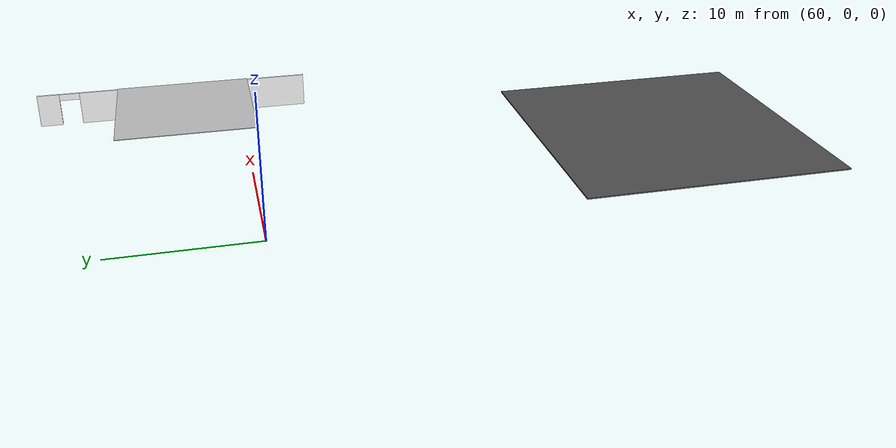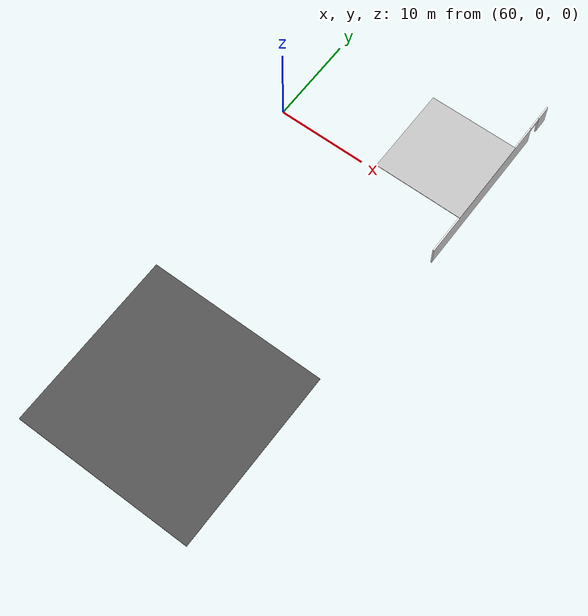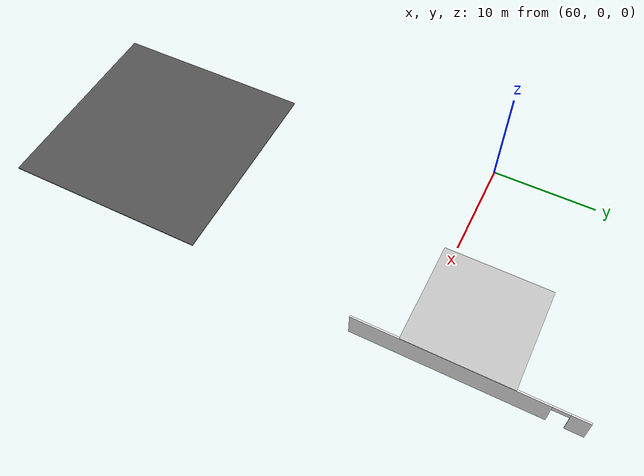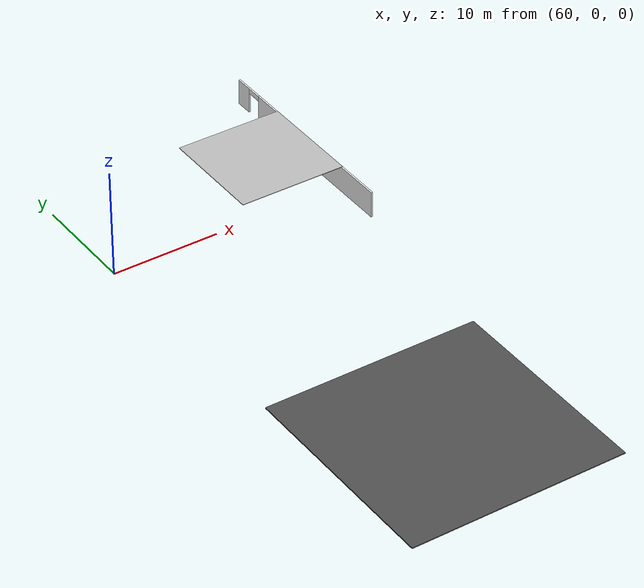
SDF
<sdf version="1.6">
 <world name="default">
  <model name="mainoffice">
   <pose>42.7555 15.4488 0 0 -0 0</pose>
   <link name="Wall_43">
    <pose>39.3509 -10.35 0 0 0 -1.5708</pose>
    <visual name="Wall_43_Visual_0">
     <pose>-9.42687 0 1.25 0 -0 0</pose>
     <geometry><box><size>1.64626 0.15 2.5</size></box></geometry>
     <material>
      <script>
       <uri>model://office_env/materials/scripts</uri>
       <uri>model://office_env/materials/textures</uri>
       <name>wall</name>
      </script>
      <ambient>1 1 1 1</ambient>
     </material>
    </visual>
    <collision name="Wall_43_Collision_0">
     <geometry><box><size>1.64626 0.15 2.5</size></box></geometry>
     <pose>-9.42687 0 1.25 0 -0 0</pose>
    </collision>
    <visual name="Wall_43_Visual_1">
     <pose>1.57313 0 1.25 0 -0 0</pose>
     <geometry><box><size>17.3537 0.15 2.5</size></box></geometry>
     <material>
      <script>
       <uri>model://office_env/materials/scripts</uri>
       <uri>model://office_env/materials/textures</uri>
       <name>wall</name>
      </script>
      <ambient>1 1 1 1</ambient>
     </material>
    </visual>
    <collision name="Wall_43_Collision_1">
     <geometry><box><size>17.3537 0.15 2.5</size></box></geometry>
     <pose>1.57313 0 1.25 0 -0 0</pose>
    </collision>
    <visual name="Wall_43_Visual_2">
     <pose>-7.85374 0 2.25 0 -0 0</pose>
     <geometry><box><size>1.5 0.15 0.5</size></box></geometry>
     <material>
      <script>
       <uri>model://office_env/materials/scripts</uri>
       <uri>model://office_env/materials/textures</uri>
       <name>wall</name>
      </script>
      <ambient>1 1 1 1</ambient>
     </material>
    </visual>
    <collision name="Wall_43_Collision_2">
     <geometry><box><size>1.5 0.15 0.5</size></box></geometry>
     <pose>-7.85374 0 2.25 0 -0 0</pose>
    </collision>
   </link>
   <static>1</static>
  </model>
  <model name="asphalt_plane">
   <static>1</static>
   <link name="link">
    <collision name="collision"><geometry><box><size>20 20 0.1</size></box></geometry></collision>
    <visual name="visual">
     <cast_shadows>0</cast_shadows>
     <geometry><box><size>20 20 0.1</size></box></geometry>
     <material>
      <script>
       <uri>model://asphalt_plane/materials/scripts</uri>
       <uri>model://asphalt_plane/materials/textures</uri>
       <name>vrc/asphalt</name>
      </script>
     </material>
    </visual>
   </link>
   <pose>70.7475 -31.5972 0 0 -0 0</pose>
  </model>
  <model name="Floor_3_clone_10_clone_4">
   <link name="main">
    <pose>0 0 0.01 0 -0 0</pose>
    <collision name="main_Collision"><geometry><box><size>10 10 0.05</size></box></geometry></collision>
    <visual name="main_Visual">
     <geometry><box><size>10 10 0.05</size></box></geometry>
     <material>
      <script>
       <uri>model://Floor_small/materials/scripts</uri>
       <uri>model://Floor_small/materials/textures</uri>
       <name>floor</name>
      </script>
     </material>
    </visual>
   </link>
   <static>1</static>
   <pose>77.1663 4.3134 2.5 0 -0 0</pose>
  </model>
 </world>
</sdf>
